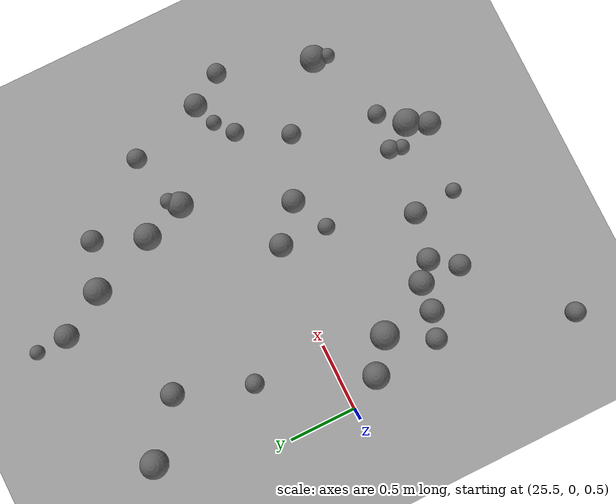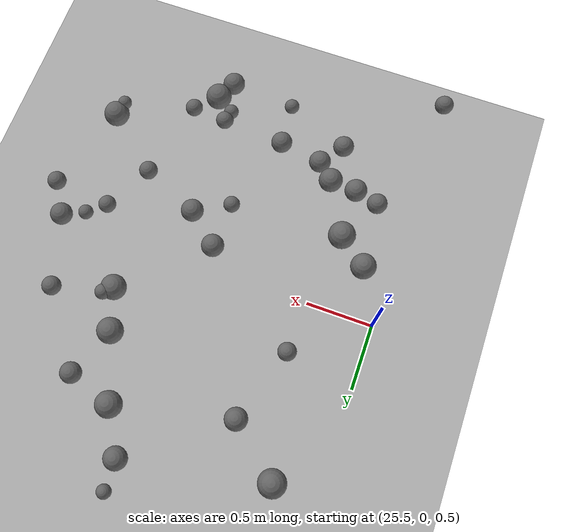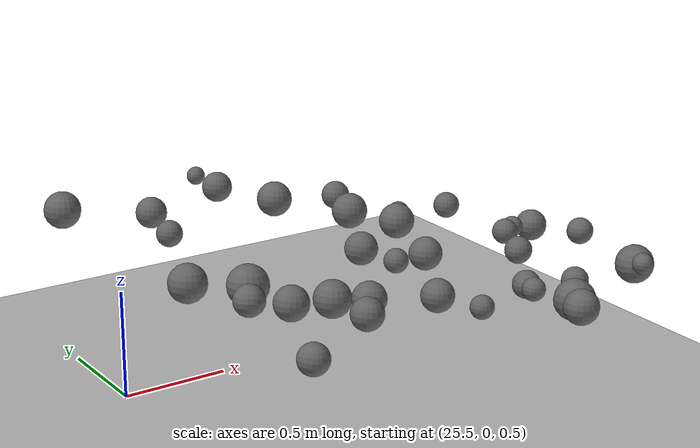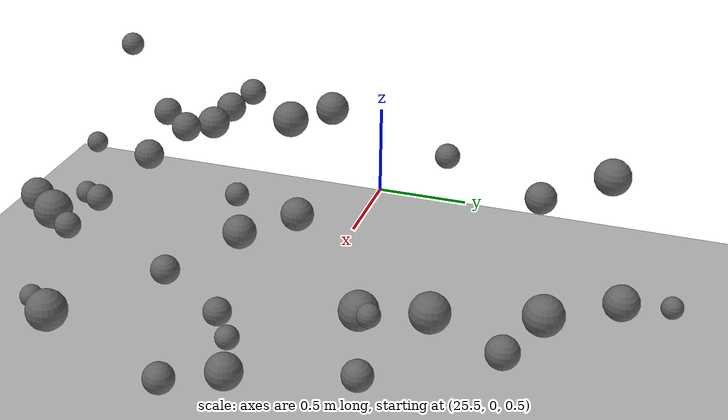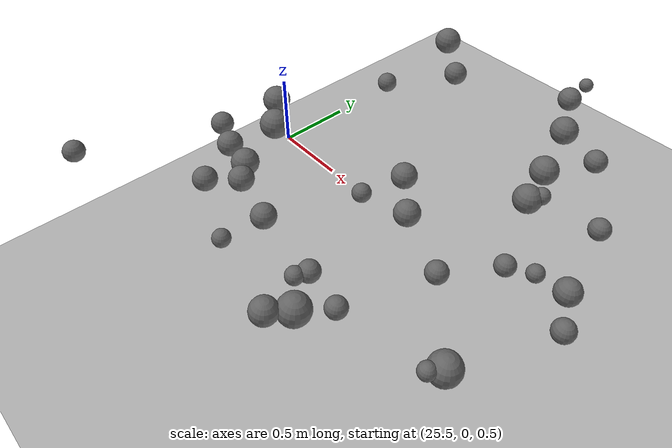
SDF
<sdf version="1.8">
 <world name="extreme_disturbance_parkour">
  <model name="ground_plane">
   <static>true</static>
   <link name="link">
    <collision name="collision">
     <geometry><plane><normal>0 0 1</normal><size>100 100</size></plane></geometry>
     <surface><friction><ode><mu>1.5</mu><mu2>1.5</mu2></ode></friction></surface>
    </collision>
    <visual name="visual">
     <geometry><plane><normal>0 0 1</normal><size>100 100</size></plane></geometry>
     <material><ambient>0.7 0.7 0.7 1</ambient><diffuse>0.7 0.7 0.7 1</diffuse></material>
    </visual>
   </link>
  </model>
  <model name="stone_243">
   <static>true</static>
   <pose>27.3575 0.5101 0.8882 -0.0700 0.1000 0.0000</pose>
   <link name="link">
    <collision name="collision">
     <geometry><sphere><radius>0.0557</radius></sphere></geometry>
     <surface><friction><ode><mu>100.0</mu><mu2>100.0</mu2></ode></friction></surface>
    </collision>
    <visual name="visual">
     <geometry><sphere><radius>0.0557</radius></sphere></geometry>
     <material><ambient>0.3 0.3 0.3 1</ambient><diffuse>0.4 0.4 0.4 1</diffuse></material>
    </visual>
   </link>
  </model>
  <model name="stone_244">
   <static>true</static>
   <pose>26.7444 -0.0415 0.9712 -0.0700 0.1000 0.0000</pose>
   <link name="link">
    <collision name="collision">
     <geometry><sphere><radius>0.0809</radius></sphere></geometry>
     <surface><friction><ode><mu>100.0</mu><mu2>100.0</mu2></ode></friction></surface>
    </collision>
    <visual name="visual">
     <geometry><sphere><radius>0.0809</radius></sphere></geometry>
     <material><ambient>0.3 0.3 0.3 1</ambient><diffuse>0.4 0.4 0.4 1</diffuse></material>
    </visual>
   </link>
  </model>
  <model name="stone_247">
   <static>true</static>
   <pose>27.5762 -0.0997 0.9153 -0.0700 0.1000 0.0000</pose>
   <link name="link">
    <collision name="collision">
     <geometry><sphere><radius>0.0631</radius></sphere></geometry>
     <surface><friction><ode><mu>100.0</mu><mu2>100.0</mu2></ode></friction></surface>
    </collision>
    <visual name="visual">
     <geometry><sphere><radius>0.0631</radius></sphere></geometry>
     <material><ambient>0.3 0.3 0.3 1</ambient><diffuse>0.4 0.4 0.4 1</diffuse></material>
    </visual>
   </link>
  </model>
  <model name="stone_251">
   <static>true</static>
   <pose>28.0177 -0.1682 0.8529 -0.0700 0.1000 0.0000</pose>
   <link name="link">
    <collision name="collision">
     <geometry><sphere><radius>0.0681</radius></sphere></geometry>
     <surface><friction><ode><mu>100.0</mu><mu2>100.0</mu2></ode></friction></surface>
    </collision>
    <visual name="visual">
     <geometry><sphere><radius>0.0681</radius></sphere></geometry>
     <material><ambient>0.3 0.3 0.3 1</ambient><diffuse>0.4 0.4 0.4 1</diffuse></material>
    </visual>
   </link>
  </model>
  <model name="stone_252">
   <static>true</static>
   <pose>27.3529 1.0998 0.8248 -0.0700 0.1000 0.0000</pose>
   <link name="link">
    <collision name="collision">
     <geometry><sphere><radius>0.0764</radius></sphere></geometry>
     <surface><friction><ode><mu>100.0</mu><mu2>100.0</mu2></ode></friction></surface>
    </collision>
    <visual name="visual">
     <geometry><sphere><radius>0.0764</radius></sphere></geometry>
     <material><ambient>0.3 0.3 0.3 1</ambient><diffuse>0.4 0.4 0.4 1</diffuse></material>
    </visual>
   </link>
  </model>
  <model name="stone_254">
   <static>true</static>
   <pose>26.2329 -0.8499 1.0883 -0.0700 0.1000 0.0000</pose>
   <link name="link">
    <collision name="collision">
     <geometry><sphere><radius>0.0766</radius></sphere></geometry>
     <surface><friction><ode><mu>100.0</mu><mu2>100.0</mu2></ode></friction></surface>
    </collision>
    <visual name="visual">
     <geometry><sphere><radius>0.0766</radius></sphere></geometry>
     <material><ambient>0.3 0.3 0.3 1</ambient><diffuse>0.4 0.4 0.4 1</diffuse></material>
    </visual>
   </link>
  </model>
  <model name="stone_255">
   <static>true</static>
   <pose>26.8287 1.7401 0.8601 -0.0700 0.1000 0.0000</pose>
   <link name="link">
    <collision name="collision">
     <geometry><sphere><radius>0.0508</radius></sphere></geometry>
     <surface><friction><ode><mu>100.0</mu><mu2>100.0</mu2></ode></friction></surface>
    </collision>
    <visual name="visual">
     <geometry><sphere><radius>0.0508</radius></sphere></geometry>
     <material><ambient>0.3 0.3 0.3 1</ambient><diffuse>0.4 0.4 0.4 1</diffuse></material>
    </visual>
   </link>
  </model>
  <model name="stone_266">
   <static>true</static>
   <pose>27.8815 0.0589 0.8462 -0.0700 0.1000 0.0000</pose>
   <link name="link">
    <collision name="collision">
     <geometry><sphere><radius>0.0807</radius></sphere></geometry>
     <surface><friction><ode><mu>100.0</mu><mu2>100.0</mu2></ode></friction></surface>
    </collision>
    <visual name="visual">
     <geometry><sphere><radius>0.0807</radius></sphere></geometry>
     <material><ambient>0.3 0.3 0.3 1</ambient><diffuse>0.4 0.4 0.4 1</diffuse></material>
    </visual>
   </link>
  </model>
  <model name="stone_270">
   <static>true</static>
   <pose>26.0100 0.5087 1.0271 -0.0700 0.1000 0.0000</pose>
   <link name="link">
    <collision name="collision">
     <geometry><sphere><radius>0.0646</radius></sphere></geometry>
     <surface><friction><ode><mu>100.0</mu><mu2>100.0</mu2></ode></friction></surface>
    </collision>
    <visual name="visual">
     <geometry><sphere><radius>0.0646</radius></sphere></geometry>
     <material><ambient>0.3 0.3 0.3 1</ambient><diffuse>0.4 0.4 0.4 1</diffuse></material>
    </visual>
   </link>
  </model>
  <model name="stone_272">
   <static>true</static>
   <pose>27.7267 0.5809 0.8406 -0.0700 0.1000 0.0000</pose>
   <link name="link">
    <collision name="collision">
     <geometry><sphere><radius>0.0691</radius></sphere></geometry>
     <surface><friction><ode><mu>100.0</mu><mu2>100.0</mu2></ode></friction></surface>
    </collision>
    <visual name="visual">
     <geometry><sphere><radius>0.0691</radius></sphere></geometry>
     <material><ambient>0.3 0.3 0.3 1</ambient><diffuse>0.4 0.4 0.4 1</diffuse></material>
    </visual>
   </link>
  </model>
  <model name="stone_273">
   <static>true</static>
   <pose>25.9188 -0.3823 1.0657 -0.0700 0.1000 0.0000</pose>
   <link name="link">
    <collision name="collision">
     <geometry><sphere><radius>0.0958</radius></sphere></geometry>
     <surface><friction><ode><mu>100.0</mu><mu2>100.0</mu2></ode></friction></surface>
    </collision>
    <visual name="visual">
     <geometry><sphere><radius>0.0958</radius></sphere></geometry>
     <material><ambient>0.3 0.3 0.3 1</ambient><diffuse>0.4 0.4 0.4 1</diffuse></material>
    </visual>
   </link>
  </model>
  <model name="stone_277">
   <static>true</static>
   <pose>25.7599 -0.6623 1.1214 -0.0700 0.1000 0.0000</pose>
   <link name="link">
    <collision name="collision">
     <geometry><sphere><radius>0.0706</radius></sphere></geometry>
     <surface><friction><ode><mu>100.0</mu><mu2>100.0</mu2></ode></friction></surface>
    </collision>
    <visual name="visual">
     <geometry><sphere><radius>0.0706</radius></sphere></geometry>
     <material><ambient>0.3 0.3 0.3 1</ambient><diffuse>0.4 0.4 0.4 1</diffuse></material>
    </visual>
   </link>
  </model>
  <model name="stone_278">
   <static>true</static>
   <pose>26.1805 1.0287 0.9574 -0.0700 0.1000 0.0000</pose>
   <link name="link">
    <collision name="collision">
     <geometry><sphere><radius>0.0802</radius></sphere></geometry>
     <surface><friction><ode><mu>100.0</mu><mu2>100.0</mu2></ode></friction></surface>
    </collision>
    <visual name="visual">
     <geometry><sphere><radius>0.0802</radius></sphere></geometry>
     <material><ambient>0.3 0.3 0.3 1</ambient><diffuse>0.4 0.4 0.4 1</diffuse></material>
    </visual>
   </link>
  </model>
  <model name="stone_279">
   <static>true</static>
   <pose>26.1173 -0.7446 1.0789 -0.0700 0.1000 0.0000</pose>
   <link name="link">
    <collision name="collision">
     <geometry><sphere><radius>0.0841</radius></sphere></geometry>
     <surface><friction><ode><mu>100.0</mu><mu2>100.0</mu2></ode></friction></surface>
    </collision>
    <visual name="visual">
     <geometry><sphere><radius>0.0841</radius></sphere></geometry>
     <material><ambient>0.3 0.3 0.3 1</ambient><diffuse>0.4 0.4 0.4 1</diffuse></material>
    </visual>
   </link>
  </model>
  <model name="stone_282">
   <static>true</static>
   <pose>26.8421 1.5221 0.8489 -0.0700 0.1000 0.0000</pose>
   <link name="link">
    <collision name="collision">
     <geometry><sphere><radius>0.0832</radius></sphere></geometry>
     <surface><friction><ode><mu>100.0</mu><mu2>100.0</mu2></ode></friction></surface>
    </collision>
    <visual name="visual">
     <geometry><sphere><radius>0.0832</radius></sphere></geometry>
     <material><ambient>0.3 0.3 0.3 1</ambient><diffuse>0.4 0.4 0.4 1</diffuse></material>
    </visual>
   </link>
  </model>
  <model name="stone_285">
   <static>true</static>
   <pose>27.2455 -0.9964 1.0044 -0.0700 0.1000 0.0000</pose>
   <link name="link">
    <collision name="collision">
     <geometry><sphere><radius>0.0625</radius></sphere></geometry>
     <surface><friction><ode><mu>100.0</mu><mu2>100.0</mu2></ode></friction></surface>
    </collision>
    <visual name="visual">
     <geometry><sphere><radius>0.0625</radius></sphere></geometry>
     <material><ambient>0.3 0.3 0.3 1</ambient><diffuse>0.4 0.4 0.4 1</diffuse></material>
    </visual>
   </link>
  </model>
  <model name="stone_287">
   <static>true</static>
   <pose>27.0254 1.2114 0.8302 -0.0700 0.1000 0.0000</pose>
   <link name="link">
    <collision name="collision">
     <geometry><sphere><radius>0.0956</radius></sphere></geometry>
     <surface><friction><ode><mu>100.0</mu><mu2>100.0</mu2></ode></friction></surface>
    </collision>
    <visual name="visual">
     <geometry><sphere><radius>0.0956</radius></sphere></geometry>
     <material><ambient>0.3 0.3 0.3 1</ambient><diffuse>0.4 0.4 0.4 1</diffuse></material>
    </visual>
   </link>
  </model>
  <model name="stone_291">
   <static>true</static>
   <pose>25.7133 -0.2162 1.0658 -0.0700 0.1000 0.0000</pose>
   <link name="link">
    <collision name="collision">
     <geometry><sphere><radius>0.0894</radius></sphere></geometry>
     <surface><friction><ode><mu>100.0</mu><mu2>100.0</mu2></ode></friction></surface>
    </collision>
    <visual name="visual">
     <geometry><sphere><radius>0.0894</radius></sphere></geometry>
     <material><ambient>0.3 0.3 0.3 1</ambient><diffuse>0.4 0.4 0.4 1</diffuse></material>
    </visual>
   </link>
  </model>
  <model name="stone_299">
   <static>true</static>
   <pose>26.5591 -1.1968 1.0944 -0.0700 0.1000 0.0000</pose>
   <link name="link">
    <collision name="collision">
     <geometry><sphere><radius>0.0522</radius></sphere></geometry>
     <surface><friction><ode><mu>100.0</mu><mu2>100.0</mu2></ode></friction></surface>
    </collision>
    <visual name="visual">
     <geometry><sphere><radius>0.0522</radius></sphere></geometry>
     <material><ambient>0.3 0.3 0.3 1</ambient><diffuse>0.4 0.4 0.4 1</diffuse></material>
    </visual>
   </link>
  </model>
  <model name="stone_300">
   <static>true</static>
   <pose>26.9928 -0.9627 1.0288 -0.0700 0.1000 0.0000</pose>
   <link name="link">
    <collision name="collision">
     <geometry><sphere><radius>0.0636</radius></sphere></geometry>
     <surface><friction><ode><mu>100.0</mu><mu2>100.0</mu2></ode></friction></surface>
    </collision>
    <visual name="visual">
     <geometry><sphere><radius>0.0636</radius></sphere></geometry>
     <material><ambient>0.3 0.3 0.3 1</ambient><diffuse>0.4 0.4 0.4 1</diffuse></material>
    </visual>
   </link>
  </model>
  <model name="stone_301">
   <static>true</static>
   <pose>26.1106 -1.0129 1.1015 -0.0700 0.1000 0.0000</pose>
   <link name="link">
    <collision name="collision">
     <geometry><sphere><radius>0.0729</radius></sphere></geometry>
     <surface><friction><ode><mu>100.0</mu><mu2>100.0</mu2></ode></friction></surface>
    </collision>
    <visual name="visual">
     <geometry><sphere><radius>0.0729</radius></sphere></geometry>
     <material><ambient>0.3 0.3 0.3 1</ambient><diffuse>0.4 0.4 0.4 1</diffuse></material>
    </visual>
   </link>
  </model>
  <model name="stone_302">
   <static>true</static>
   <pose>27.7635 -0.8899 0.9457 -0.0700 0.1000 0.0000</pose>
   <link name="link">
    <collision name="collision">
     <geometry><sphere><radius>0.0507</radius></sphere></geometry>
     <surface><friction><ode><mu>100.0</mu><mu2>100.0</mu2></ode></friction></surface>
    </collision>
    <visual name="visual">
     <geometry><sphere><radius>0.0507</radius></sphere></geometry>
     <material><ambient>0.3 0.3 0.3 1</ambient><diffuse>0.4 0.4 0.4 1</diffuse></material>
    </visual>
   </link>
  </model>
  <model name="stone_308">
   <static>true</static>
   <pose>27.1096 -1.1515 0.9927 -0.0700 0.1000 0.0000</pose>
   <link name="link">
    <collision name="collision">
     <geometry><sphere><radius>0.0937</radius></sphere></geometry>
     <surface><friction><ode><mu>100.0</mu><mu2>100.0</mu2></ode></friction></surface>
    </collision>
    <visual name="visual">
     <geometry><sphere><radius>0.0937</radius></sphere></geometry>
     <material><ambient>0.3 0.3 0.3 1</ambient><diffuse>0.4 0.4 0.4 1</diffuse></material>
    </visual>
   </link>
  </model>
  <model name="stone_310">
   <static>true</static>
   <pose>27.7060 -0.0002 0.8872 -0.0700 0.1000 0.0000</pose>
   <link name="link">
    <collision name="collision">
     <geometry><sphere><radius>0.0534</radius></sphere></geometry>
     <surface><friction><ode><mu>100.0</mu><mu2>100.0</mu2></ode></friction></surface>
    </collision>
    <visual name="visual">
     <geometry><sphere><radius>0.0534</radius></sphere></geometry>
     <material><ambient>0.3 0.3 0.3 1</ambient><diffuse>0.4 0.4 0.4 1</diffuse></material>
    </visual>
   </link>
  </model>
  <model name="stone_326">
   <static>true</static>
   <pose>27.3876 -0.4323 0.9529 -0.0700 0.1000 0.0000</pose>
   <link name="link">
    <collision name="collision">
     <geometry><sphere><radius>0.0666</radius></sphere></geometry>
     <surface><friction><ode><mu>100.0</mu><mu2>100.0</mu2></ode></friction></surface>
    </collision>
    <visual name="visual">
     <geometry><sphere><radius>0.0666</radius></sphere></geometry>
     <material><ambient>0.3 0.3 0.3 1</ambient><diffuse>0.4 0.4 0.4 1</diffuse></material>
    </visual>
   </link>
  </model>
  <model name="stone_329">
   <static>true</static>
   <pose>27.2066 0.7437 0.8586 -0.0700 0.1000 0.0000</pose>
   <link name="link">
    <collision name="collision">
     <geometry><sphere><radius>0.0941</radius></sphere></geometry>
     <surface><friction><ode><mu>100.0</mu><mu2>100.0</mu2></ode></friction></surface>
    </collision>
    <visual name="visual">
     <geometry><sphere><radius>0.0941</radius></sphere></geometry>
     <material><ambient>0.3 0.3 0.3 1</ambient><diffuse>0.4 0.4 0.4 1</diffuse></material>
    </visual>
   </link>
  </model>
  <model name="stone_330">
   <static>true</static>
   <pose>25.9276 -0.7218 1.0925 -0.0700 0.1000 0.0000</pose>
   <link name="link">
    <collision name="collision">
     <geometry><sphere><radius>0.0788</radius></sphere></geometry>
     <surface><friction><ode><mu>100.0</mu><mu2>100.0</mu2></ode></friction></surface>
    </collision>
    <visual name="visual">
     <geometry><sphere><radius>0.0788</radius></sphere></geometry>
     <material><ambient>0.3 0.3 0.3 1</ambient><diffuse>0.4 0.4 0.4 1</diffuse></material>
    </visual>
   </link>
  </model>
  <model name="stone_331">
   <static>true</static>
   <pose>25.5353 -1.5021 1.2171 -0.0700 0.1000 0.0000</pose>
   <link name="link">
    <collision name="collision">
     <geometry><sphere><radius>0.0647</radius></sphere></geometry>
     <surface><friction><ode><mu>100.0</mu><mu2>100.0</mu2></ode></friction></surface>
    </collision>
    <visual name="visual">
     <geometry><sphere><radius>0.0647</radius></sphere></geometry>
     <material><ambient>0.3 0.3 0.3 1</ambient><diffuse>0.4 0.4 0.4 1</diffuse></material>
    </visual>
   </link>
  </model>
  <model name="stone_333">
   <static>true</static>
   <pose>27.0351 -1.2772 1.0163 -0.0700 0.1000 0.0000</pose>
   <link name="link">
    <collision name="collision">
     <geometry><sphere><radius>0.0794</radius></sphere></geometry>
     <surface><friction><ode><mu>100.0</mu><mu2>100.0</mu2></ode></friction></surface>
    </collision>
    <visual name="visual">
     <geometry><sphere><radius>0.0794</radius></sphere></geometry>
     <material><ambient>0.3 0.3 0.3 1</ambient><diffuse>0.4 0.4 0.4 1</diffuse></material>
    </visual>
   </link>
  </model>
  <model name="stone_336">
   <static>true</static>
   <pose>26.5399 -0.9177 1.0593 -0.0700 0.1000 0.0000</pose>
   <link name="link">
    <collision name="collision">
     <geometry><sphere><radius>0.0748</radius></sphere></geometry>
     <surface><friction><ode><mu>100.0</mu><mu2>100.0</mu2></ode></friction></surface>
    </collision>
    <visual name="visual">
     <geometry><sphere><radius>0.0748</radius></sphere></geometry>
     <material><ambient>0.3 0.3 0.3 1</ambient><diffuse>0.4 0.4 0.4 1</diffuse></material>
    </visual>
   </link>
  </model>
  <model name="stone_337">
   <static>true</static>
   <pose>26.9703 -1.0395 1.0348 -0.0700 0.1000 0.0000</pose>
   <link name="link">
    <collision name="collision">
     <geometry><sphere><radius>0.0529</radius></sphere></geometry>
     <surface><friction><ode><mu>100.0</mu><mu2>100.0</mu2></ode></friction></surface>
    </collision>
    <visual name="visual">
     <geometry><sphere><radius>0.0529</radius></sphere></geometry>
     <material><ambient>0.3 0.3 0.3 1</ambient><diffuse>0.4 0.4 0.4 1</diffuse></material>
    </visual>
   </link>
  </model>
  <model name="stone_342">
   <static>true</static>
   <pose>27.7964 -0.8014 0.9118 -0.0700 0.1000 0.0000</pose>
   <link name="link">
    <collision name="collision">
     <geometry><sphere><radius>0.0930</radius></sphere></geometry>
     <surface><friction><ode><mu>100.0</mu><mu2>100.0</mu2></ode></friction></surface>
    </collision>
    <visual name="visual">
     <geometry><sphere><radius>0.0930</radius></sphere></geometry>
     <material><ambient>0.3 0.3 0.3 1</ambient><diffuse>0.4 0.4 0.4 1</diffuse></material>
    </visual>
   </link>
  </model>
  <model name="stone_349">
   <static>true</static>
   <pose>26.7193 -0.3619 1.0117 -0.0700 0.1000 0.0000</pose>
   <link name="link">
    <collision name="collision">
     <geometry><sphere><radius>0.0583</radius></sphere></geometry>
     <surface><friction><ode><mu>100.0</mu><mu2>100.0</mu2></ode></friction></surface>
    </collision>
    <visual name="visual">
     <geometry><sphere><radius>0.0583</radius></sphere></geometry>
     <material><ambient>0.3 0.3 0.3 1</ambient><diffuse>0.4 0.4 0.4 1</diffuse></material>
    </visual>
   </link>
  </model>
  <model name="stone_350">
   <static>true</static>
   <pose>26.9748 -0.2444 0.9605 -0.0700 0.1000 0.0000</pose>
   <link name="link">
    <collision name="collision">
     <geometry><sphere><radius>0.0807</radius></sphere></geometry>
     <surface><friction><ode><mu>100.0</mu><mu2>100.0</mu2></ode></friction></surface>
    </collision>
    <visual name="visual">
     <geometry><sphere><radius>0.0807</radius></sphere></geometry>
     <material><ambient>0.3 0.3 0.3 1</ambient><diffuse>0.4 0.4 0.4 1</diffuse></material>
    </visual>
   </link>
  </model>
  <model name="stone_355">
   <static>true</static>
   <pose>25.8260 1.3309 0.9520 -0.0700 0.1000 0.0000</pose>
   <link name="link">
    <collision name="collision">
     <geometry><sphere><radius>0.0965</radius></sphere></geometry>
     <surface><friction><ode><mu>100.0</mu><mu2>100.0</mu2></ode></friction></surface>
    </collision>
    <visual name="visual">
     <geometry><sphere><radius>0.0965</radius></sphere></geometry>
     <material><ambient>0.3 0.3 0.3 1</ambient><diffuse>0.4 0.4 0.4 1</diffuse></material>
    </visual>
   </link>
  </model>
  <model name="stone_357">
   <static>true</static>
   <pose>27.3037 0.4494 0.8675 -0.0700 0.1000 0.0000</pose>
   <link name="link">
    <collision name="collision">
     <geometry><sphere><radius>0.0916</radius></sphere></geometry>
     <surface><friction><ode><mu>100.0</mu><mu2>100.0</mu2></ode></friction></surface>
    </collision>
    <visual name="visual">
     <geometry><sphere><radius>0.0916</radius></sphere></geometry>
     <material><ambient>0.3 0.3 0.3 1</ambient><diffuse>0.4 0.4 0.4 1</diffuse></material>
    </visual>
   </link>
  </model>
 </world>
</sdf>
